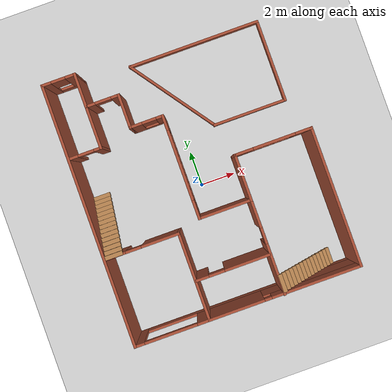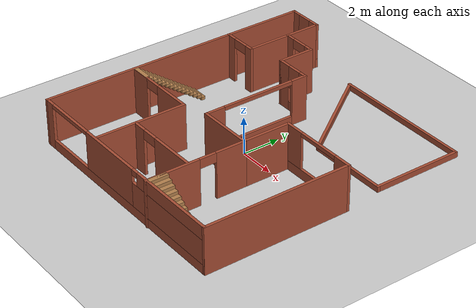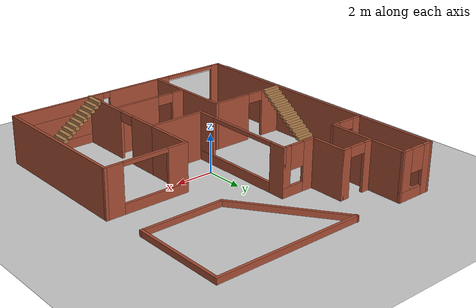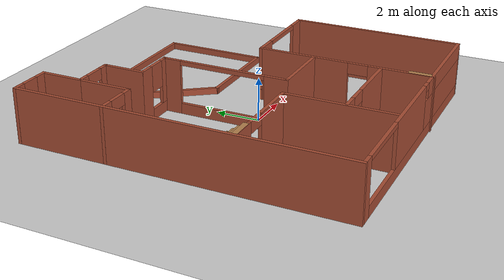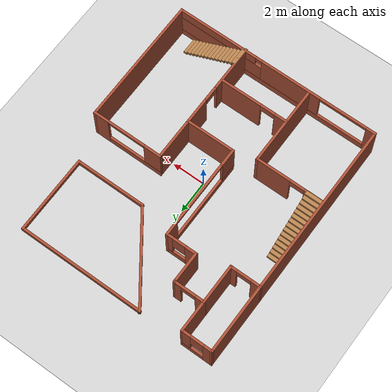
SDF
<sdf version="1.6">
 <world name="default">
  <model name="ground_plane">
   <static>1</static>
   <link name="link">
    <collision name="collision">
     <geometry><plane><normal>0 0 1</normal><size>100 100</size></plane></geometry>
     <surface><friction><ode><mu>100</mu><mu2>50</mu2></ode></friction></surface>
    </collision>
    <visual name="visual">
     <cast_shadows>0</cast_shadows>
     <geometry><plane><normal>0 0 1</normal><size>100 100</size></plane></geometry>
     <material>
      <script><uri>file://media/materials/scripts/gazebo.material</uri><name>Gazebo/Grey</name></script>
     </material>
    </visual>
   </link>
  </model>
  <model name="housebuilding">
   <pose>0.142168 0.463862 0 0 -0 0</pose>
   <link name="Stairs_0">
    <visual name="Stairs_0_Visual_0">
     <pose>5.43244 -6.86535 0.083333 0 -0 -1.5708</pose>
     <geometry><box><size>1 0.233333 0.166667</size></box></geometry>
     <material>
      <script><uri>file://media/materials/scripts/gazebo.material</uri><name>Gazebo/Wood</name></script>
      <ambient>1 1 1 1</ambient>
     </material>
     <meta><layer>0</layer></meta>
    </visual>
    <collision name="Stairs_0_Collision_0">
     <geometry><box><size>1 0.233333 0.166667</size></box></geometry>
     <pose>5.43244 -6.86535 0.083333 0 -0 -1.5708</pose>
    </collision>
    <visual name="Stairs_0_Visual_1">
     <pose>5.1991 -6.86535 0.25 0 -0 -1.5708</pose>
     <geometry><box><size>1 0.233333 0.166667</size></box></geometry>
     <material>
      <script><uri>file://media/materials/scripts/gazebo.material</uri><name>Gazebo/Wood</name></script>
      <ambient>1 1 1 1</ambient>
     </material>
     <meta><layer>0</layer></meta>
    </visual>
    <collision name="Stairs_0_Collision_1">
     <geometry><box><size>1 0.233333 0.166667</size></box></geometry>
     <pose>5.1991 -6.86535 0.25 0 -0 -1.5708</pose>
    </collision>
    <visual name="Stairs_0_Visual_2">
     <pose>4.96577 -6.86535 0.416667 0 -0 -1.5708</pose>
     <geometry><box><size>1 0.233333 0.166667</size></box></geometry>
     <material>
      <script><uri>file://media/materials/scripts/gazebo.material</uri><name>Gazebo/Wood</name></script>
      <ambient>1 1 1 1</ambient>
     </material>
     <meta><layer>0</layer></meta>
    </visual>
    <collision name="Stairs_0_Collision_2">
     <geometry><box><size>1 0.233333 0.166667</size></box></geometry>
     <pose>4.96577 -6.86535 0.416667 0 -0 -1.5708</pose>
    </collision>
    <visual name="Stairs_0_Visual_3">
     <pose>4.73244 -6.86535 0.583333 0 -0 -1.5708</pose>
     <geometry><box><size>1 0.233333 0.166667</size></box></geometry>
     <material>
      <script><uri>file://media/materials/scripts/gazebo.material</uri><name>Gazebo/Wood</name></script>
      <ambient>1 1 1 1</ambient>
     </material>
     <meta><layer>0</layer></meta>
    </visual>
    <collision name="Stairs_0_Collision_3">
     <geometry><box><size>1 0.233333 0.166667</size></box></geometry>
     <pose>4.73244 -6.86535 0.583333 0 -0 -1.5708</pose>
    </collision>
    <visual name="Stairs_0_Visual_4">
     <pose>4.4991 -6.86535 0.75 0 -0 -1.5708</pose>
     <geometry><box><size>1 0.233333 0.166667</size></box></geometry>
     <material>
      <script><uri>file://media/materials/scripts/gazebo.material</uri><name>Gazebo/Wood</name></script>
      <ambient>1 1 1 1</ambient>
     </material>
     <meta><layer>0</layer></meta>
    </visual>
    <collision name="Stairs_0_Collision_4">
     <geometry><box><size>1 0.233333 0.166667</size></box></geometry>
     <pose>4.4991 -6.86535 0.75 0 -0 -1.5708</pose>
    </collision>
    <visual name="Stairs_0_Visual_5">
     <pose>4.26577 -6.86535 0.916667 0 -0 -1.5708</pose>
     <geometry><box><size>1 0.233333 0.166667</size></box></geometry>
     <material>
      <script><uri>file://media/materials/scripts/gazebo.material</uri><name>Gazebo/Wood</name></script>
      <ambient>1 1 1 1</ambient>
     </material>
     <meta><layer>0</layer></meta>
    </visual>
    <collision name="Stairs_0_Collision_5">
     <geometry><box><size>1 0.233333 0.166667</size></box></geometry>
     <pose>4.26577 -6.86535 0.916667 0 -0 -1.5708</pose>
    </collision>
    <visual name="Stairs_0_Visual_6">
     <pose>4.03244 -6.86535 1.08333 0 -0 -1.5708</pose>
     <geometry><box><size>1 0.233333 0.166667</size></box></geometry>
     <material>
      <script><uri>file://media/materials/scripts/gazebo.material</uri><name>Gazebo/Wood</name></script>
      <ambient>1 1 1 1</ambient>
     </material>
     <meta><layer>0</layer></meta>
    </visual>
    <collision name="Stairs_0_Collision_6">
     <geometry><box><size>1 0.233333 0.166667</size></box></geometry>
     <pose>4.03244 -6.86535 1.08333 0 -0 -1.5708</pose>
    </collision>
    <visual name="Stairs_0_Visual_7">
     <pose>3.7991 -6.86535 1.25 0 -0 -1.5708</pose>
     <geometry><box><size>1 0.233333 0.166667</size></box></geometry>
     <material>
      <script><uri>file://media/materials/scripts/gazebo.material</uri><name>Gazebo/Wood</name></script>
      <ambient>1 1 1 1</ambient>
     </material>
     <meta><layer>0</layer></meta>
    </visual>
    <collision name="Stairs_0_Collision_7">
     <geometry><box><size>1 0.233333 0.166667</size></box></geometry>
     <pose>3.7991 -6.86535 1.25 0 -0 -1.5708</pose>
    </collision>
    <visual name="Stairs_0_Visual_8">
     <pose>3.56577 -6.86535 1.41667 0 -0 -1.5708</pose>
     <geometry><box><size>1 0.233333 0.166667</size></box></geometry>
     <material>
      <script><uri>file://media/materials/scripts/gazebo.material</uri><name>Gazebo/Wood</name></script>
      <ambient>1 1 1 1</ambient>
     </material>
     <meta><layer>0</layer></meta>
    </visual>
    <collision name="Stairs_0_Collision_8">
     <geometry><box><size>1 0.233333 0.166667</size></box></geometry>
     <pose>3.56577 -6.86535 1.41667 0 -0 -1.5708</pose>
    </collision>
    <visual name="Stairs_0_Visual_9">
     <pose>3.33244 -6.86535 1.58333 0 -0 -1.5708</pose>
     <geometry><box><size>1 0.233333 0.166667</size></box></geometry>
     <material>
      <script><uri>file://media/materials/scripts/gazebo.material</uri><name>Gazebo/Wood</name></script>
      <ambient>1 1 1 1</ambient>
     </material>
     <meta><layer>0</layer></meta>
    </visual>
    <collision name="Stairs_0_Collision_9">
     <geometry><box><size>1 0.233333 0.166667</size></box></geometry>
     <pose>3.33244 -6.86535 1.58333 0 -0 -1.5708</pose>
    </collision>
    <visual name="Stairs_0_Visual_10">
     <pose>3.0991 -6.86535 1.75 0 -0 -1.5708</pose>
     <geometry><box><size>1 0.233333 0.166667</size></box></geometry>
     <material>
      <script><uri>file://media/materials/scripts/gazebo.material</uri><name>Gazebo/Wood</name></script>
      <ambient>1 1 1 1</ambient>
     </material>
     <meta><layer>0</layer></meta>
    </visual>
    <collision name="Stairs_0_Collision_10">
     <geometry><box><size>1 0.233333 0.166667</size></box></geometry>
     <pose>3.0991 -6.86535 1.75 0 -0 -1.5708</pose>
    </collision>
    <visual name="Stairs_0_Visual_11">
     <pose>2.86577 -6.86535 1.91667 0 -0 -1.5708</pose>
     <geometry><box><size>1 0.233333 0.166667</size></box></geometry>
     <material>
      <script><uri>file://media/materials/scripts/gazebo.material</uri><name>Gazebo/Wood</name></script>
      <ambient>1 1 1 1</ambient>
     </material>
     <meta><layer>0</layer></meta>
    </visual>
    <collision name="Stairs_0_Collision_11">
     <geometry><box><size>1 0.233333 0.166667</size></box></geometry>
     <pose>2.86577 -6.86535 1.91667 0 -0 -1.5708</pose>
    </collision>
    <visual name="Stairs_0_Visual_12">
     <pose>2.63244 -6.86535 2.08333 0 -0 -1.5708</pose>
     <geometry><box><size>1 0.233333 0.166667</size></box></geometry>
     <material>
      <script><uri>file://media/materials/scripts/gazebo.material</uri><name>Gazebo/Wood</name></script>
      <ambient>1 1 1 1</ambient>
     </material>
     <meta><layer>0</layer></meta>
    </visual>
    <collision name="Stairs_0_Collision_12">
     <geometry><box><size>1 0.233333 0.166667</size></box></geometry>
     <pose>2.63244 -6.86535 2.08333 0 -0 -1.5708</pose>
    </collision>
    <visual name="Stairs_0_Visual_13">
     <pose>2.3991 -6.86535 2.25 0 -0 -1.5708</pose>
     <geometry><box><size>1 0.233333 0.166667</size></box></geometry>
     <material>
      <script><uri>file://media/materials/scripts/gazebo.material</uri><name>Gazebo/Wood</name></script>
      <ambient>1 1 1 1</ambient>
     </material>
     <meta><layer>0</layer></meta>
    </visual>
    <collision name="Stairs_0_Collision_13">
     <geometry><box><size>1 0.233333 0.166667</size></box></geometry>
     <pose>2.3991 -6.86535 2.25 0 -0 -1.5708</pose>
    </collision>
    <visual name="Stairs_0_Visual_14">
     <pose>2.16577 -6.86535 2.41667 0 -0 -1.5708</pose>
     <geometry><box><size>1 0.233333 0.166667</size></box></geometry>
     <material>
      <script><uri>file://media/materials/scripts/gazebo.material</uri><name>Gazebo/Wood</name></script>
      <ambient>1 1 1 1</ambient>
     </material>
     <meta><layer>0</layer></meta>
    </visual>
    <collision name="Stairs_0_Collision_14">
     <geometry><box><size>1 0.233333 0.166667</size></box></geometry>
     <pose>2.16577 -6.86535 2.41667 0 -0 -1.5708</pose>
    </collision>
   </link>
   <link name="Stairs_1">
    <visual name="Stairs_1_Visual_0">
     <pose>-5.85852 0.84566 0.083333 0 -0 0</pose>
     <geometry><box><size>1 0.233333 0.166667</size></box></geometry>
     <material>
      <script><uri>file://media/materials/scripts/gazebo.material</uri><name>Gazebo/Wood</name></script>
      <ambient>1 1 1 1</ambient>
     </material>
     <meta><layer>0</layer></meta>
    </visual>
    <collision name="Stairs_1_Collision_0">
     <geometry><box><size>1 0.233333 0.166667</size></box></geometry>
     <pose>-5.85852 0.84566 0.083333 0 -0 0</pose>
    </collision>
    <visual name="Stairs_1_Visual_1">
     <pose>-5.85852 0.612327 0.25 0 -0 0</pose>
     <geometry><box><size>1 0.233333 0.166667</size></box></geometry>
     <material>
      <script><uri>file://media/materials/scripts/gazebo.material</uri><name>Gazebo/Wood</name></script>
      <ambient>1 1 1 1</ambient>
     </material>
     <meta><layer>0</layer></meta>
    </visual>
    <collision name="Stairs_1_Collision_1">
     <geometry><box><size>1 0.233333 0.166667</size></box></geometry>
     <pose>-5.85852 0.612327 0.25 0 -0 0</pose>
    </collision>
    <visual name="Stairs_1_Visual_2">
     <pose>-5.85852 0.378993 0.416667 0 -0 0</pose>
     <geometry><box><size>1 0.233333 0.166667</size></box></geometry>
     <material>
      <script><uri>file://media/materials/scripts/gazebo.material</uri><name>Gazebo/Wood</name></script>
      <ambient>1 1 1 1</ambient>
     </material>
     <meta><layer>0</layer></meta>
    </visual>
    <collision name="Stairs_1_Collision_2">
     <geometry><box><size>1 0.233333 0.166667</size></box></geometry>
     <pose>-5.85852 0.378993 0.416667 0 -0 0</pose>
    </collision>
    <visual name="Stairs_1_Visual_3">
     <pose>-5.85852 0.14566 0.583333 0 -0 0</pose>
     <geometry><box><size>1 0.233333 0.166667</size></box></geometry>
     <material>
      <script><uri>file://media/materials/scripts/gazebo.material</uri><name>Gazebo/Wood</name></script>
      <ambient>1 1 1 1</ambient>
     </material>
     <meta><layer>0</layer></meta>
    </visual>
    <collision name="Stairs_1_Collision_3">
     <geometry><box><size>1 0.233333 0.166667</size></box></geometry>
     <pose>-5.85852 0.14566 0.583333 0 -0 0</pose>
    </collision>
    <visual name="Stairs_1_Visual_4">
     <pose>-5.85852 -0.087673 0.75 0 -0 0</pose>
     <geometry><box><size>1 0.233333 0.166667</size></box></geometry>
     <material>
      <script><uri>file://media/materials/scripts/gazebo.material</uri><name>Gazebo/Wood</name></script>
      <ambient>1 1 1 1</ambient>
     </material>
     <meta><layer>0</layer></meta>
    </visual>
    <collision name="Stairs_1_Collision_4">
     <geometry><box><size>1 0.233333 0.166667</size></box></geometry>
     <pose>-5.85852 -0.087673 0.75 0 -0 0</pose>
    </collision>
    <visual name="Stairs_1_Visual_5">
     <pose>-5.85852 -0.321007 0.916667 0 -0 0</pose>
     <geometry><box><size>1 0.233333 0.166667</size></box></geometry>
     <material>
      <script><uri>file://media/materials/scripts/gazebo.material</uri><name>Gazebo/Wood</name></script>
      <ambient>1 1 1 1</ambient>
     </material>
     <meta><layer>0</layer></meta>
    </visual>
    <collision name="Stairs_1_Collision_5">
     <geometry><box><size>1 0.233333 0.166667</size></box></geometry>
     <pose>-5.85852 -0.321007 0.916667 0 -0 0</pose>
    </collision>
    <visual name="Stairs_1_Visual_6">
     <pose>-5.85852 -0.55434 1.08333 0 -0 0</pose>
     <geometry><box><size>1 0.233333 0.166667</size></box></geometry>
     <material>
      <script><uri>file://media/materials/scripts/gazebo.material</uri><name>Gazebo/Wood</name></script>
      <ambient>1 1 1 1</ambient>
     </material>
     <meta><layer>0</layer></meta>
    </visual>
    <collision name="Stairs_1_Collision_6">
     <geometry><box><size>1 0.233333 0.166667</size></box></geometry>
     <pose>-5.85852 -0.55434 1.08333 0 -0 0</pose>
    </collision>
    <visual name="Stairs_1_Visual_7">
     <pose>-5.85852 -0.787673 1.25 0 -0 0</pose>
     <geometry><box><size>1 0.233333 0.166667</size></box></geometry>
     <material>
      <script><uri>file://media/materials/scripts/gazebo.material</uri><name>Gazebo/Wood</name></script>
      <ambient>1 1 1 1</ambient>
     </material>
     <meta><layer>0</layer></meta>
    </visual>
    <collision name="Stairs_1_Collision_7">
     <geometry><box><size>1 0.233333 0.166667</size></box></geometry>
     <pose>-5.85852 -0.787673 1.25 0 -0 0</pose>
    </collision>
    <visual name="Stairs_1_Visual_8">
     <pose>-5.85852 -1.02101 1.41667 0 -0 0</pose>
     <geometry><box><size>1 0.233333 0.166667</size></box></geometry>
     <material>
      <script><uri>file://media/materials/scripts/gazebo.material</uri><name>Gazebo/Wood</name></script>
      <ambient>1 1 1 1</ambient>
     </material>
     <meta><layer>0</layer></meta>
    </visual>
    <collision name="Stairs_1_Collision_8">
     <geometry><box><size>1 0.233333 0.166667</size></box></geometry>
     <pose>-5.85852 -1.02101 1.41667 0 -0 0</pose>
    </collision>
    <visual name="Stairs_1_Visual_9">
     <pose>-5.85852 -1.25434 1.58333 0 -0 0</pose>
     <geometry><box><size>1 0.233333 0.166667</size></box></geometry>
     <material>
      <script><uri>file://media/materials/scripts/gazebo.material</uri><name>Gazebo/Wood</name></script>
      <ambient>1 1 1 1</ambient>
     </material>
     <meta><layer>0</layer></meta>
    </visual>
    <collision name="Stairs_1_Collision_9">
     <geometry><box><size>1 0.233333 0.166667</size></box></geometry>
     <pose>-5.85852 -1.25434 1.58333 0 -0 0</pose>
    </collision>
    <visual name="Stairs_1_Visual_10">
     <pose>-5.85852 -1.48767 1.75 0 -0 0</pose>
     <geometry><box><size>1 0.233333 0.166667</size></box></geometry>
     <material>
      <script><uri>file://media/materials/scripts/gazebo.material</uri><name>Gazebo/Wood</name></script>
      <ambient>1 1 1 1</ambient>
     </material>
     <meta><layer>0</layer></meta>
    </visual>
    <collision name="Stairs_1_Collision_10">
     <geometry><box><size>1 0.233333 0.166667</size></box></geometry>
     <pose>-5.85852 -1.48767 1.75 0 -0 0</pose>
    </collision>
    <visual name="Stairs_1_Visual_11">
     <pose>-5.85852 -1.72101 1.91667 0 -0 0</pose>
     <geometry><box><size>1 0.233333 0.166667</size></box></geometry>
     <material>
      <script><uri>file://media/materials/scripts/gazebo.material</uri><name>Gazebo/Wood</name></script>
      <ambient>1 1 1 1</ambient>
     </material>
     <meta><layer>0</layer></meta>
    </visual>
    <collision name="Stairs_1_Collision_11">
     <geometry><box><size>1 0.233333 0.166667</size></box></geometry>
     <pose>-5.85852 -1.72101 1.91667 0 -0 0</pose>
    </collision>
    <visual name="Stairs_1_Visual_12">
     <pose>-5.85852 -1.95434 2.08333 0 -0 0</pose>
     <geometry><box><size>1 0.233333 0.166667</size></box></geometry>
     <material>
      <script><uri>file://media/materials/scripts/gazebo.material</uri><name>Gazebo/Wood</name></script>
      <ambient>1 1 1 1</ambient>
     </material>
     <meta><layer>0</layer></meta>
    </visual>
    <collision name="Stairs_1_Collision_12">
     <geometry><box><size>1 0.233333 0.166667</size></box></geometry>
     <pose>-5.85852 -1.95434 2.08333 0 -0 0</pose>
    </collision>
    <visual name="Stairs_1_Visual_13">
     <pose>-5.85852 -2.18767 2.25 0 -0 0</pose>
     <geometry><box><size>1 0.233333 0.166667</size></box></geometry>
     <material>
      <script><uri>file://media/materials/scripts/gazebo.material</uri><name>Gazebo/Wood</name></script>
      <ambient>1 1 1 1</ambient>
     </material>
     <meta><layer>0</layer></meta>
    </visual>
    <collision name="Stairs_1_Collision_13">
     <geometry><box><size>1 0.233333 0.166667</size></box></geometry>
     <pose>-5.85852 -2.18767 2.25 0 -0 0</pose>
    </collision>
    <visual name="Stairs_1_Visual_14">
     <pose>-5.85852 -2.42101 2.41667 0 -0 0</pose>
     <geometry><box><size>1 0.233333 0.166667</size></box></geometry>
     <material>
      <script><uri>file://media/materials/scripts/gazebo.material</uri><name>Gazebo/Wood</name></script>
      <ambient>1 1 1 1</ambient>
     </material>
     <meta><layer>0</layer></meta>
    </visual>
    <collision name="Stairs_1_Collision_14">
     <geometry><box><size>1 0.233333 0.166667</size></box></geometry>
     <pose>-5.85852 -2.42101 2.41667 0 -0 0</pose>
    </collision>
   </link>
   <link name="Wall_1">
    <collision name="Wall_1_Collision">
     <geometry><box><size>15 0.15 2.5</size></box></geometry>
     <pose>0 0 1.25 0 -0 0</pose>
    </collision>
    <visual name="Wall_1_Visual">
     <pose>0 0 1.25 0 -0 0</pose>
     <geometry><box><size>15 0.15 2.5</size></box></geometry>
     <material>
      <script><uri>file://media/materials/scripts/gazebo.material</uri><name>Gazebo/Bricks</name></script>
      <ambient>1 1 1 1</ambient>
     </material>
     <meta><layer>0</layer></meta>
    </visual>
    <pose>-6.42477 0.024996 0 0 0 -1.5708</pose>
   </link>
   <link name="Wall_11">
    <pose>-1.80023 3.74977 0 0 -0 0</pose>
    <visual name="Wall_11_Visual_0">
     <pose>-0.629965 0 1.25 0 -0 0</pose>
     <geometry><box><size>0.74007 0.15 2.5</size></box></geometry>
     <material>
      <script><uri>file://media/materials/scripts/gazebo.material</uri><name>Gazebo/Bricks</name></script>
      <ambient>1 1 1 1</ambient>
     </material>
     <meta><layer>0</layer></meta>
    </visual>
    <collision name="Wall_11_Collision_0">
     <geometry><box><size>0.74007 0.15 2.5</size></box></geometry>
     <pose>-0.629965 0 1.25 0 -0 0</pose>
    </collision>
    <visual name="Wall_11_Visual_1">
     <pose>0.370035 0 0.25 0 -0 0</pose>
     <geometry><box><size>1.25993 0.15 0.5</size></box></geometry>
     <material>
      <script><uri>file://media/materials/scripts/gazebo.material</uri><name>Gazebo/Bricks</name></script>
      <ambient>1 1 1 1</ambient>
     </material>
     <meta><layer>0</layer></meta>
    </visual>
    <collision name="Wall_11_Collision_1">
     <geometry><box><size>1.25993 0.15 0.5</size></box></geometry>
     <pose>0.370035 0 0.25 0 -0 0</pose>
    </collision>
    <visual name="Wall_11_Visual_2">
     <pose>0.770035 0 1.5 0 -0 0</pose>
     <geometry><box><size>0.45993 0.15 2</size></box></geometry>
     <material>
      <script><uri>file://media/materials/scripts/gazebo.material</uri><name>Gazebo/Bricks</name></script>
      <ambient>1 1 1 1</ambient>
     </material>
     <meta><layer>0</layer></meta>
    </visual>
    <collision name="Wall_11_Collision_2">
     <geometry><box><size>0.45993 0.15 2</size></box></geometry>
     <pose>0.770035 0 1.5 0 -0 0</pose>
    </collision>
    <visual name="Wall_11_Visual_3">
     <pose>0.14007 0 1.9 0 -0 0</pose>
     <geometry><box><size>0.8 0.15 1.2</size></box></geometry>
     <material>
      <script><uri>file://media/materials/scripts/gazebo.material</uri><name>Gazebo/Bricks</name></script>
      <ambient>1 1 1 1</ambient>
     </material>
     <meta><layer>0</layer></meta>
    </visual>
    <collision name="Wall_11_Collision_3">
     <geometry><box><size>0.8 0.15 1.2</size></box></geometry>
     <pose>0.14007 0 1.9 0 -0 0</pose>
    </collision>
   </link>
   <link name="Wall_13">
    <pose>-0.875232 0.824773 0 0 0 -1.5708</pose>
    <visual name="Wall_13_Visual_0">
     <pose>-2.55253 0 1.25 0 -0 0</pose>
     <geometry><box><size>0.894936 0.15 2.5</size></box></geometry>
     <material>
      <script><uri>file://media/materials/scripts/gazebo.material</uri><name>Gazebo/Bricks</name></script>
      <ambient>1 1 1 1</ambient>
     </material>
     <meta><layer>0</layer></meta>
    </visual>
    <collision name="Wall_13_Collision_0">
     <geometry><box><size>0.894936 0.15 2.5</size></box></geometry>
     <pose>-2.55253 0 1.25 0 -0 0</pose>
    </collision>
    <visual name="Wall_13_Visual_1">
     <pose>0.447468 0 0.25 0 -0 0</pose>
     <geometry><box><size>5.10506 0.15 0.5</size></box></geometry>
     <material>
      <script><uri>file://media/materials/scripts/gazebo.material</uri><name>Gazebo/Bricks</name></script>
      <ambient>1 1 1 1</ambient>
     </material>
     <meta><layer>0</layer></meta>
    </visual>
    <collision name="Wall_13_Collision_1">
     <geometry><box><size>5.10506 0.15 0.5</size></box></geometry>
     <pose>0.447468 0 0.25 0 -0 0</pose>
    </collision>
    <visual name="Wall_13_Visual_2">
     <pose>2.44747 0 1.5 0 -0 0</pose>
     <geometry><box><size>1.10506 0.15 2</size></box></geometry>
     <material>
      <script><uri>file://media/materials/scripts/gazebo.material</uri><name>Gazebo/Bricks</name></script>
      <ambient>1 1 1 1</ambient>
     </material>
     <meta><layer>0</layer></meta>
    </visual>
    <collision name="Wall_13_Collision_2">
     <geometry><box><size>1.10506 0.15 2</size></box></geometry>
     <pose>2.44747 0 1.5 0 -0 0</pose>
    </collision>
    <visual name="Wall_13_Visual_3">
     <pose>-0.105064 0 2.4 0 -0 0</pose>
     <geometry><box><size>4 0.15 0.2</size></box></geometry>
     <material>
      <script><uri>file://media/materials/scripts/gazebo.material</uri><name>Gazebo/Bricks</name></script>
      <ambient>1 1 1 1</ambient>
     </material>
     <meta><layer>0</layer></meta>
    </visual>
    <collision name="Wall_13_Collision_3">
     <geometry><box><size>4 0.15 0.2</size></box></geometry>
     <pose>-0.105064 0 2.4 0 -0 0</pose>
    </collision>
   </link>
   <link name="Wall_15">
    <collision name="Wall_15_Collision">
     <geometry><box><size>3 0.15 2.5</size></box></geometry>
     <pose>0 0 1.25 0 -0 0</pose>
    </collision>
    <visual name="Wall_15_Visual">
     <pose>0 0 1.25 0 -0 0</pose>
     <geometry><box><size>3 0.15 2.5</size></box></geometry>
     <material>
      <script><uri>file://media/materials/scripts/gazebo.material</uri><name>Gazebo/Bricks</name></script>
      <ambient>1 1 1 1</ambient>
     </material>
     <meta><layer>0</layer></meta>
    </visual>
    <pose>0.549768 -2.10023 0 0 -0 0</pose>
   </link>
   <link name="Wall_17">
    <pose>0.000231 -7.4 0 0 -0 0</pose>
    <visual name="Wall_17_Visual_0">
     <pose>-6.18989 0 1.25 0 -0 0</pose>
     <geometry><box><size>0.620214 0.15 2.5</size></box></geometry>
     <material>
      <script><uri>file://media/materials/scripts/gazebo.material</uri><name>Gazebo/Bricks</name></script>
      <ambient>1 1 1 1</ambient>
     </material>
     <meta><layer>0</layer></meta>
    </visual>
    <collision name="Wall_17_Collision_0">
     <geometry><box><size>0.620214 0.15 2.5</size></box></geometry>
     <pose>-6.18989 0 1.25 0 -0 0</pose>
    </collision>
    <visual name="Wall_17_Visual_1">
     <pose>0.310107 0 0.25 0 -0 0</pose>
     <geometry><box><size>12.3798 0.15 0.5</size></box></geometry>
     <material>
      <script><uri>file://media/materials/scripts/gazebo.material</uri><name>Gazebo/Bricks</name></script>
      <ambient>1 1 1 1</ambient>
     </material>
     <meta><layer>0</layer></meta>
    </visual>
    <collision name="Wall_17_Collision_1">
     <geometry><box><size>12.3798 0.15 0.5</size></box></geometry>
     <pose>0.310107 0 0.25 0 -0 0</pose>
    </collision>
    <visual name="Wall_17_Visual_2">
     <pose>-0.962685 0 1.5 0 -0 0</pose>
     <geometry><box><size>3.8342 0.15 2</size></box></geometry>
     <material>
      <script><uri>file://media/materials/scripts/gazebo.material</uri><name>Gazebo/Bricks</name></script>
      <ambient>1 1 1 1</ambient>
     </material>
     <meta><layer>0</layer></meta>
    </visual>
    <collision name="Wall_17_Collision_2">
     <geometry><box><size>3.8342 0.15 2</size></box></geometry>
     <pose>-0.962685 0 1.5 0 -0 0</pose>
    </collision>
    <visual name="Wall_17_Visual_3">
     <pose>3.72721 0 1.15 0 -0 0</pose>
     <geometry><box><size>5.54558 0.15 1.3</size></box></geometry>
     <material>
      <script><uri>file://media/materials/scripts/gazebo.material</uri><name>Gazebo/Bricks</name></script>
      <ambient>1 1 1 1</ambient>
     </material>
     <meta><layer>0</layer></meta>
    </visual>
    <collision name="Wall_17_Collision_3">
     <geometry><box><size>5.54558 0.15 1.3</size></box></geometry>
     <pose>3.72721 0 1.15 0 -0 0</pose>
    </collision>
    <visual name="Wall_17_Visual_4">
     <pose>3.92721 0 2.15 0 -0 0</pose>
     <geometry><box><size>5.14558 0.15 0.7</size></box></geometry>
     <material>
      <script><uri>file://media/materials/scripts/gazebo.material</uri><name>Gazebo/Bricks</name></script>
      <ambient>1 1 1 1</ambient>
     </material>
     <meta><layer>0</layer></meta>
    </visual>
    <collision name="Wall_17_Collision_4">
     <geometry><box><size>5.14558 0.15 0.7</size></box></geometry>
     <pose>3.92721 0 2.15 0 -0 0</pose>
    </collision>
    <visual name="Wall_17_Visual_5">
     <pose>1.15442 0 2.35 0 -0 0</pose>
     <geometry><box><size>0.4 0.15 0.3</size></box></geometry>
     <material>
      <script><uri>file://media/materials/scripts/gazebo.material</uri><name>Gazebo/Bricks</name></script>
      <ambient>1 1 1 1</ambient>
     </material>
     <meta><layer>0</layer></meta>
    </visual>
    <collision name="Wall_17_Collision_5">
     <geometry><box><size>0.4 0.15 0.3</size></box></geometry>
     <pose>1.15442 0 2.35 0 -0 0</pose>
    </collision>
    <visual name="Wall_17_Visual_6">
     <pose>-4.37979 0 2.4 0 -0 0</pose>
     <geometry><box><size>3 0.15 0.2</size></box></geometry>
     <material>
      <script><uri>file://media/materials/scripts/gazebo.material</uri><name>Gazebo/Bricks</name></script>
      <ambient>1 1 1 1</ambient>
     </material>
     <meta><layer>0</layer></meta>
    </visual>
    <collision name="Wall_17_Collision_6">
     <geometry><box><size>3 0.15 0.2</size></box></geometry>
     <pose>-4.37979 0 2.4 0 -0 0</pose>
    </collision>
   </link>
   <link name="Wall_19">
    <collision name="Wall_19_Collision">
     <geometry><box><size>8 0.15 2.5</size></box></geometry>
     <pose>0 0 1.25 0 -0 0</pose>
    </collision>
    <visual name="Wall_19_Visual">
     <pose>0 0 1.25 0 -0 0</pose>
     <geometry><box><size>8 0.15 2.5</size></box></geometry>
     <material>
      <script><uri>file://media/materials/scripts/gazebo.material</uri><name>Gazebo/Bricks</name></script>
      <ambient>1 1 1 1</ambient>
     </material>
     <meta><layer>0</layer></meta>
    </visual>
    <pose>6.42523 -3.475 0 0 -0 1.5708</pose>
   </link>
   <link name="Wall_21">
    <pose>4.25023 0.449996 0 0 -0 3.14159</pose>
    <visual name="Wall_21_Visual_0">
     <pose>-1.75159 0 1.25 0 -0 0</pose>
     <geometry><box><size>0.996815 0.15 2.5</size></box></geometry>
     <material>
      <script><uri>file://media/materials/scripts/gazebo.material</uri><name>Gazebo/Bricks</name></script>
      <ambient>1 1 1 1</ambient>
     </material>
     <meta><layer>0</layer></meta>
    </visual>
    <collision name="Wall_21_Collision_0">
     <geometry><box><size>0.996815 0.15 2.5</size></box></geometry>
     <pose>-1.75159 0 1.25 0 -0 0</pose>
    </collision>
    <visual name="Wall_21_Visual_1">
     <pose>0.498407 0 0.25 0 -0 0</pose>
     <geometry><box><size>3.50319 0.15 0.5</size></box></geometry>
     <material>
      <script><uri>file://media/materials/scripts/gazebo.material</uri><name>Gazebo/Bricks</name></script>
      <ambient>1 1 1 1</ambient>
     </material>
     <meta><layer>0</layer></meta>
    </visual>
    <collision name="Wall_21_Collision_1">
     <geometry><box><size>3.50319 0.15 0.5</size></box></geometry>
     <pose>0.498407 0 0.25 0 -0 0</pose>
    </collision>
    <visual name="Wall_21_Visual_2">
     <pose>1.69841 0 1.5 0 -0 0</pose>
     <geometry><box><size>1.10319 0.15 2</size></box></geometry>
     <material>
      <script><uri>file://media/materials/scripts/gazebo.material</uri><name>Gazebo/Bricks</name></script>
      <ambient>1 1 1 1</ambient>
     </material>
     <meta><layer>0</layer></meta>
    </visual>
    <collision name="Wall_21_Collision_2">
     <geometry><box><size>1.10319 0.15 2</size></box></geometry>
     <pose>1.69841 0 1.5 0 -0 0</pose>
    </collision>
    <visual name="Wall_21_Visual_3">
     <pose>-0.053185 0 2.4 0 -0 0</pose>
     <geometry><box><size>2.4 0.15 0.2</size></box></geometry>
     <material>
      <script><uri>file://media/materials/scripts/gazebo.material</uri><name>Gazebo/Bricks</name></script>
      <ambient>1 1 1 1</ambient>
     </material>
     <meta><layer>0</layer></meta>
    </visual>
    <collision name="Wall_21_Collision_3">
     <geometry><box><size>2.4 0.15 0.2</size></box></geometry>
     <pose>-0.053185 0 2.4 0 -0 0</pose>
    </collision>
   </link>
   <link name="Wall_22">
    <collision name="Wall_22_Collision">
     <geometry><box><size>2.7 0.15 2.5</size></box></geometry>
     <pose>0 0 1.25 0 -0 0</pose>
    </collision>
    <visual name="Wall_22_Visual">
     <pose>0 0 1.25 0 -0 0</pose>
     <geometry><box><size>2.7 0.15 2.5</size></box></geometry>
     <material>
      <script><uri>file://media/materials/scripts/gazebo.material</uri><name>Gazebo/Bricks</name></script>
      <ambient>1 1 1 1</ambient>
     </material>
     <meta><layer>0</layer></meta>
    </visual>
    <pose>2.07523 -0.825004 0 0 0 -1.5708</pose>
   </link>
   <link name="Wall_28">
    <pose>-4.24345 -2.48646 0 0 -0 3.14159</pose>
    <visual name="Wall_28_Visual_0">
     <pose>-1.02115 0 1.25 0 -0 0</pose>
     <geometry><box><size>2.2077 0.15 2.5</size></box></geometry>
     <material>
      <script><uri>file://media/materials/scripts/gazebo.material</uri><name>Gazebo/Bricks</name></script>
      <ambient>1 1 1 1</ambient>
     </material>
     <meta><layer>0</layer></meta>
    </visual>
    <collision name="Wall_28_Collision_0">
     <geometry><box><size>2.2077 0.15 2.5</size></box></geometry>
     <pose>-1.02115 0 1.25 0 -0 0</pose>
    </collision>
    <visual name="Wall_28_Visual_1">
     <pose>1.55385 0 1.25 0 -0 0</pose>
     <geometry><box><size>1.1423 0.15 2.5</size></box></geometry>
     <material>
      <script><uri>file://media/materials/scripts/gazebo.material</uri><name>Gazebo/Bricks</name></script>
      <ambient>1 1 1 1</ambient>
     </material>
     <meta><layer>0</layer></meta>
    </visual>
    <collision name="Wall_28_Collision_1">
     <geometry><box><size>1.1423 0.15 2.5</size></box></geometry>
     <pose>1.55385 0 1.25 0 -0 0</pose>
    </collision>
    <visual name="Wall_28_Visual_2">
     <pose>0.532703 0 2.25 0 -0 0</pose>
     <geometry><box><size>0.9 0.15 0.5</size></box></geometry>
     <material>
      <script><uri>file://media/materials/scripts/gazebo.material</uri><name>Gazebo/Bricks</name></script>
      <ambient>1 1 1 1</ambient>
     </material>
     <meta><layer>0</layer></meta>
    </visual>
    <collision name="Wall_28_Collision_2">
     <geometry><box><size>0.9 0.15 0.5</size></box></geometry>
     <pose>0.532703 0 2.25 0 -0 0</pose>
    </collision>
   </link>
   <link name="Wall_3">
    <pose>-5.5 7.44988 0 0 0 -0.000121</pose>
    <visual name="Wall_3_Visual_0">
     <pose>-0.712281 0 1.25 0 -0 0</pose>
     <geometry><box><size>0.575437 0.15 2.5</size></box></geometry>
     <material>
      <script><uri>file://media/materials/scripts/gazebo.material</uri><name>Gazebo/Bricks</name></script>
      <ambient>1 1 1 1</ambient>
     </material>
     <meta><layer>0</layer></meta>
    </visual>
    <collision name="Wall_3_Collision_0">
     <geometry><box><size>0.575437 0.15 2.5</size></box></geometry>
     <pose>-0.712281 0 1.25 0 -0 0</pose>
    </collision>
    <visual name="Wall_3_Visual_1">
     <pose>0.287719 0 0.25 0 -0 0</pose>
     <geometry><box><size>1.42456 0.15 0.5</size></box></geometry>
     <material>
      <script><uri>file://media/materials/scripts/gazebo.material</uri><name>Gazebo/Bricks</name></script>
      <ambient>1 1 1 1</ambient>
     </material>
     <meta><layer>0</layer></meta>
    </visual>
    <collision name="Wall_3_Collision_1">
     <geometry><box><size>1.42456 0.15 0.5</size></box></geometry>
     <pose>0.287719 0 0.25 0 -0 0</pose>
    </collision>
    <visual name="Wall_3_Visual_2">
     <pose>0.687719 0 1.5 0 -0 0</pose>
     <geometry><box><size>0.624563 0.15 2</size></box></geometry>
     <material>
      <script><uri>file://media/materials/scripts/gazebo.material</uri><name>Gazebo/Bricks</name></script>
      <ambient>1 1 1 1</ambient>
     </material>
     <meta><layer>0</layer></meta>
    </visual>
    <collision name="Wall_3_Collision_2">
     <geometry><box><size>0.624563 0.15 2</size></box></geometry>
     <pose>0.687719 0 1.5 0 -0 0</pose>
    </collision>
    <visual name="Wall_3_Visual_3">
     <pose>-0.024563 0 1.9 0 -0 0</pose>
     <geometry><box><size>0.8 0.15 1.2</size></box></geometry>
     <material>
      <script><uri>file://media/materials/scripts/gazebo.material</uri><name>Gazebo/Bricks</name></script>
      <ambient>1 1 1 1</ambient>
     </material>
     <meta><layer>0</layer></meta>
    </visual>
    <collision name="Wall_3_Collision_3">
     <geometry><box><size>0.8 0.15 1.2</size></box></geometry>
     <pose>-0.024563 0 1.9 0 -0 0</pose>
    </collision>
   </link>
   <link name="Wall_30">
    <collision name="Wall_30_Collision">
     <geometry><box><size>5 0.15 2.5</size></box></geometry>
     <pose>0 0 1.25 0 -0 0</pose>
    </collision>
    <visual name="Wall_30_Visual">
     <pose>0 0 1.25 0 -0 0</pose>
     <geometry><box><size>5 0.15 2.5</size></box></geometry>
     <material>
      <script><uri>file://media/materials/scripts/gazebo.material</uri><name>Gazebo/Bricks</name></script>
      <ambient>1 1 1 1</ambient>
     </material>
     <meta><layer>0</layer></meta>
    </visual>
    <pose>-2.19345 -4.91146 0 0 0 -1.5708</pose>
   </link>
   <link name="Wall_34">
    <pose>-0.071706 -5.18421 0 0 -0 0</pose>
    <visual name="Wall_34_Visual_0">
     <pose>-1.74498 0 1.25 0 -0 0</pose>
     <geometry><box><size>0.760033 0.15 2.5</size></box></geometry>
     <material>
      <script><uri>file://media/materials/scripts/gazebo.material</uri><name>Gazebo/Bricks</name></script>
      <ambient>1 1 1 1</ambient>
     </material>
     <meta><layer>0</layer></meta>
    </visual>
    <collision name="Wall_34_Collision_0">
     <geometry><box><size>0.760033 0.15 2.5</size></box></geometry>
     <pose>-1.74498 0 1.25 0 -0 0</pose>
    </collision>
    <visual name="Wall_34_Visual_1">
     <pose>0.830017 0 1.25 0 -0 0</pose>
     <geometry><box><size>2.58997 0.15 2.5</size></box></geometry>
     <material>
      <script><uri>file://media/materials/scripts/gazebo.material</uri><name>Gazebo/Bricks</name></script>
      <ambient>1 1 1 1</ambient>
     </material>
     <meta><layer>0</layer></meta>
    </visual>
    <collision name="Wall_34_Collision_1">
     <geometry><box><size>2.58997 0.15 2.5</size></box></geometry>
     <pose>0.830017 0 1.25 0 -0 0</pose>
    </collision>
    <visual name="Wall_34_Visual_2">
     <pose>-0.914967 0 2.25 0 -0 0</pose>
     <geometry><box><size>0.9 0.15 0.5</size></box></geometry>
     <material>
      <script><uri>file://media/materials/scripts/gazebo.material</uri><name>Gazebo/Bricks</name></script>
      <ambient>1 1 1 1</ambient>
     </material>
     <meta><layer>0</layer></meta>
    </visual>
    <collision name="Wall_34_Collision_2">
     <geometry><box><size>0.9 0.15 0.5</size></box></geometry>
     <pose>-0.914967 0 2.25 0 -0 0</pose>
    </collision>
   </link>
   <link name="Wall_43">
    <pose>2.07523 -4.775 0 0 0 -1.5708</pose>
    <visual name="Wall_43_Visual_0">
     <pose>-1.91553 0 1.25 0 -0 0</pose>
     <geometry><box><size>1.66894 0.15 2.5</size></box></geometry>
     <material>
      <script><uri>file://media/materials/scripts/gazebo.material</uri><name>Gazebo/Bricks</name></script>
      <ambient>1 1 1 1</ambient>
     </material>
     <meta><layer>0</layer></meta>
    </visual>
    <collision name="Wall_43_Collision_0">
     <geometry><box><size>1.66894 0.15 2.5</size></box></geometry>
     <pose>-1.91553 0 1.25 0 -0 0</pose>
    </collision>
    <visual name="Wall_43_Visual_1">
     <pose>1.28447 0 1.25 0 -0 0</pose>
     <geometry><box><size>2.93106 0.15 2.5</size></box></geometry>
     <material>
      <script><uri>file://media/materials/scripts/gazebo.material</uri><name>Gazebo/Bricks</name></script>
      <ambient>1 1 1 1</ambient>
     </material>
     <meta><layer>0</layer></meta>
    </visual>
    <collision name="Wall_43_Collision_1">
     <geometry><box><size>2.93106 0.15 2.5</size></box></geometry>
     <pose>1.28447 0 1.25 0 -0 0</pose>
    </collision>
    <visual name="Wall_43_Visual_2">
     <pose>-0.631055 0 2.25 0 -0 0</pose>
     <geometry><box><size>0.9 0.15 0.5</size></box></geometry>
     <material>
      <script><uri>file://media/materials/scripts/gazebo.material</uri><name>Gazebo/Bricks</name></script>
      <ambient>1 1 1 1</ambient>
     </material>
     <meta><layer>0</layer></meta>
    </visual>
    <collision name="Wall_43_Collision_2">
     <geometry><box><size>0.9 0.15 0.5</size></box></geometry>
     <pose>-0.631055 0 2.25 0 -0 0</pose>
    </collision>
   </link>
   <link name="Wall_45">
    <collision name="Wall_45_Collision">
     <geometry><box><size>2.5 0.15 2.5</size></box></geometry>
     <pose>0 0 1.25 0 -0 0</pose>
    </collision>
    <visual name="Wall_45_Visual">
     <pose>0 0 1.25 0 -0 0</pose>
     <geometry><box><size>2.5 0.15 2.5</size></box></geometry>
     <material>
      <script><uri>file://media/materials/scripts/gazebo.material</uri><name>Gazebo/Bricks</name></script>
      <ambient>1 1 1 1</ambient>
     </material>
     <meta><layer>0</layer></meta>
    </visual>
    <pose>-4.57523 4.42477 0 0 0 -1.5708</pose>
   </link>
   <link name="Wall_47">
    <pose>-5.50023 3.24977 0 0 -0 3.14159</pose>
    <visual name="Wall_47_Visual_0">
     <pose>-0.762292 0 1.25 0 -0 0</pose>
     <geometry><box><size>0.475417 0.15 2.5</size></box></geometry>
     <material>
      <script><uri>file://media/materials/scripts/gazebo.material</uri><name>Gazebo/Bricks</name></script>
      <ambient>1 1 1 1</ambient>
     </material>
     <meta><layer>0</layer></meta>
    </visual>
    <collision name="Wall_47_Collision_0">
     <geometry><box><size>0.475417 0.15 2.5</size></box></geometry>
     <pose>-0.762292 0 1.25 0 -0 0</pose>
    </collision>
    <visual name="Wall_47_Visual_1">
     <pose>0.687708 0 1.25 0 -0 0</pose>
     <geometry><box><size>0.624583 0.15 2.5</size></box></geometry>
     <material>
      <script><uri>file://media/materials/scripts/gazebo.material</uri><name>Gazebo/Bricks</name></script>
      <ambient>1 1 1 1</ambient>
     </material>
     <meta><layer>0</layer></meta>
    </visual>
    <collision name="Wall_47_Collision_1">
     <geometry><box><size>0.624583 0.15 2.5</size></box></geometry>
     <pose>0.687708 0 1.25 0 -0 0</pose>
    </collision>
    <visual name="Wall_47_Visual_2">
     <pose>-0.074583 0 2.25 0 -0 0</pose>
     <geometry><box><size>0.9 0.15 0.5</size></box></geometry>
     <material>
      <script><uri>file://media/materials/scripts/gazebo.material</uri><name>Gazebo/Bricks</name></script>
      <ambient>1 1 1 1</ambient>
     </material>
     <meta><layer>0</layer></meta>
    </visual>
    <collision name="Wall_47_Collision_2">
     <geometry><box><size>0.9 0.15 0.5</size></box></geometry>
     <pose>-0.074583 0 2.25 0 -0 0</pose>
    </collision>
   </link>
   <link name="Wall_49">
    <collision name="Wall_49_Collision">
     <geometry><box><size>8 0.15 0.3</size></box></geometry>
     <pose>0 0 0.15 0 -0 0</pose>
    </collision>
    <visual name="Wall_49_Visual">
     <pose>0 0 0.15 0 -0 0</pose>
     <geometry><box><size>8 0.15 0.3</size></box></geometry>
     <material>
      <script><uri>file://media/materials/scripts/gazebo.material</uri><name>Gazebo/Bricks</name></script>
      <ambient>1 1 1 1</ambient>
     </material>
     <meta><layer>0</layer></meta>
    </visual>
    <pose>2.16977 7.41777 0 0 -0 0</pose>
   </link>
   <link name="Wall_5">
    <collision name="Wall_5_Collision">
     <geometry><box><size>2 0.15 2.5</size></box></geometry>
     <pose>0 0 1.25 0 -0 0</pose>
    </collision>
    <visual name="Wall_5_Visual">
     <pose>0 0 1.25 0 -0 0</pose>
     <geometry><box><size>2 0.15 2.5</size></box></geometry>
     <material>
      <script><uri>file://media/materials/scripts/gazebo.material</uri><name>Gazebo/Bricks</name></script>
      <ambient>1 1 1 1</ambient>
     </material>
     <meta><layer>0</layer></meta>
    </visual>
    <pose>-4.57523 6.52477 0 0 0 -1.5708</pose>
   </link>
   <link name="Wall_51">
    <collision name="Wall_51_Collision">
     <geometry><box><size>5 0.15 0.3</size></box></geometry>
     <pose>0 0 0.15 0 -0 0</pose>
    </collision>
    <visual name="Wall_51_Visual">
     <pose>0 0 0.15 0 -0 0</pose>
     <geometry><box><size>5 0.15 0.3</size></box></geometry>
     <material>
      <script><uri>file://media/materials/scripts/gazebo.material</uri><name>Gazebo/Bricks</name></script>
      <ambient>1 1 1 1</ambient>
     </material>
     <meta><layer>0</layer></meta>
    </visual>
    <pose>6.09477 4.99277 0 0 0 -1.5708</pose>
   </link>
   <link name="Wall_52">
    <collision name="Wall_52_Collision">
     <geometry><box><size>4.5 0.15 0.3</size></box></geometry>
     <pose>0 0 0.15 0 -0 0</pose>
    </collision>
    <visual name="Wall_52_Visual">
     <pose>0 0 0.15 0 -0 0</pose>
     <geometry><box><size>4.5 0.15 0.3</size></box></geometry>
     <material>
      <script><uri>file://media/materials/scripts/gazebo.material</uri><name>Gazebo/Bricks</name></script>
      <ambient>1 1 1 1</ambient>
     </material>
     <meta><layer>0</layer></meta>
    </visual>
    <pose>3.91977 2.56777 0 0 -0 3.14159</pose>
   </link>
   <link name="Wall_53">
    <collision name="Wall_53_Collision">
     <geometry><box><size>6.13101 0.15 0.3</size></box></geometry>
     <pose>0 0 0.15 0 -0 0</pose>
    </collision>
    <visual name="Wall_53_Visual">
     <pose>0 0 0.15 0 -0 0</pose>
     <geometry><box><size>6.13101 0.15 0.3</size></box></geometry>
     <material>
      <script><uri>file://media/materials/scripts/gazebo.material</uri><name>Gazebo/Bricks</name></script>
      <ambient>1 1 1 1</ambient>
     </material>
     <meta><layer>0</layer></meta>
    </visual>
    <pose>-0.005231 4.99277 0 0 -0 2.19591</pose>
   </link>
   <link name="Wall_7">
    <pose>-3.65023 5.59977 0 0 -0 0</pose>
    <visual name="Wall_7_Visual_0">
     <pose>-0.707992 0 1.25 0 -0 0</pose>
     <geometry><box><size>0.584016 0.15 2.5</size></box></geometry>
     <material>
      <script><uri>file://media/materials/scripts/gazebo.material</uri><name>Gazebo/Bricks</name></script>
      <ambient>1 1 1 1</ambient>
     </material>
     <meta><layer>0</layer></meta>
    </visual>
    <collision name="Wall_7_Collision_0">
     <geometry><box><size>0.584016 0.15 2.5</size></box></geometry>
     <pose>-0.707992 0 1.25 0 -0 0</pose>
    </collision>
    <visual name="Wall_7_Visual_1">
     <pose>0.742008 0 1.25 0 -0 0</pose>
     <geometry><box><size>0.515984 0.15 2.5</size></box></geometry>
     <material>
      <script><uri>file://media/materials/scripts/gazebo.material</uri><name>Gazebo/Bricks</name></script>
      <ambient>1 1 1 1</ambient>
     </material>
     <meta><layer>0</layer></meta>
    </visual>
    <collision name="Wall_7_Collision_1">
     <geometry><box><size>0.515984 0.15 2.5</size></box></geometry>
     <pose>0.742008 0 1.25 0 -0 0</pose>
    </collision>
    <visual name="Wall_7_Visual_2">
     <pose>0.034016 0 2.25 0 -0 0</pose>
     <geometry><box><size>0.9 0.15 0.5</size></box></geometry>
     <material>
      <script><uri>file://media/materials/scripts/gazebo.material</uri><name>Gazebo/Bricks</name></script>
      <ambient>1 1 1 1</ambient>
     </material>
     <meta><layer>0</layer></meta>
    </visual>
    <collision name="Wall_7_Collision_2">
     <geometry><box><size>0.9 0.15 0.5</size></box></geometry>
     <pose>0.034016 0 2.25 0 -0 0</pose>
    </collision>
   </link>
   <link name="Wall_8">
    <collision name="Wall_8_Collision">
     <geometry><box><size>2 0.15 2.5</size></box></geometry>
     <pose>0 0 1.25 0 -0 0</pose>
    </collision>
    <visual name="Wall_8_Visual">
     <pose>0 0 1.25 0 -0 0</pose>
     <geometry><box><size>2 0.15 2.5</size></box></geometry>
     <material>
      <script><uri>file://media/materials/scripts/gazebo.material</uri><name>Gazebo/Bricks</name></script>
      <ambient>1 1 1 1</ambient>
     </material>
     <meta><layer>0</layer></meta>
    </visual>
    <pose>-2.72523 4.67477 0 0 0 -1.5708</pose>
   </link>
   <static>1</static>
  </model>
 </world>
</sdf>
